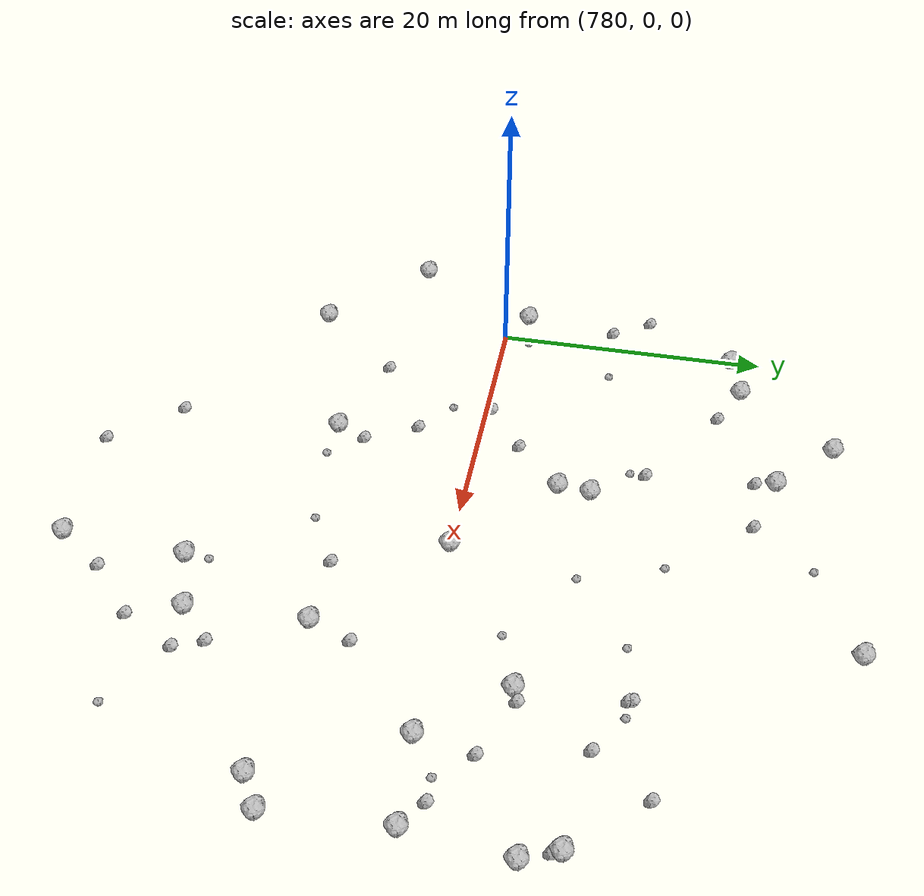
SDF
<sdf version="1.6">
 <world name="default">
  <include><uri>model://sun</uri></include>
  <model name="rock1_20_4">
   <include><uri>model://rock1</uri><pose>772.8423824960788 -7.714600676782144 0.5 0 0 0</pose></include>
  </model>
  <model name="rock1_20_5">
   <include><uri>model://rock1</uri><pose>796.561536861774 6.422122674907662 0.5 0 0 0</pose></include>
  </model>
  <model name="rock1_20_6">
   <include><uri>model://rock1</uri><pose>803.59202714553 -0.04587781677535574 0.5 0 0 0</pose></include>
  </model>
  <model name="rock1_20_7">
   <include><uri>model://rock1</uri><pose>826.7519841266889 -7.1662915874610995 0.5 0 0 0</pose></include>
  </model>
  <model name="rock1_20_8">
   <include><uri>model://rock1</uri><pose>819.7363459873835 0.7375848055278738 0.5 0 0 0</pose></include>
  </model>
  <model name="rock1_20_9">
   <include><uri>model://rock1</uri><pose>780.2218831710621 -14.453199976953057 0.5 0 0 0</pose></include>
  </model>
  <model name="rock1_20_10">
   <include><uri>model://rock1</uri><pose>827.1903501975693 8.328208386233392 0.5 0 0 0</pose></include>
  </model>
  <model name="rock1_20_11">
   <include><uri>model://rock1</uri><pose>796.8098210724355 8.77071487523277 0.5 0 0 0</pose></include>
  </model>
  <model name="rock1_20_12">
   <include><uri>model://rock1</uri><pose>783.8448784973803 18.69972343768196 0.5 0 0 0</pose></include>
  </model>
  <model name="rock1_20_13">
   <include><uri>model://rock1</uri><pose>812.3924425297104 -16.17900886182693 0.5 0 0 0</pose></include>
  </model>
  <model name="rock1_20_14">
   <include><uri>model://rock1</uri><pose>793.4921347338357 21.68483689464429 0.5 0 0 0</pose></include>
  </model>
  <model name="rock1_20_15">
   <include><uri>model://rock1</uri><pose>793.1032955579124 -10.47337456163951 0.5 0 0 0</pose></include>
  </model>
  <model name="rock1_20_16">
   <include><uri>model://rock1</uri><pose>815.077161992141 6.18144960671593 0.5 0 0 0</pose></include>
  </model>
  <model name="rock1_20_17">
   <include><uri>model://rock1</uri><pose>826.1888280513385 10.744678394271418 0.5 0 0 0</pose></include>
  </model>
  <model name="rock1_20_18">
   <include><uri>model://rock1</uri><pose>826.3362238324135 1.2042039374020987 0.5 0 0 0</pose></include>
  </model>
  <model name="rock1_20_19">
   <include><uri>model://rock1</uri><pose>812.0549300105608 -7.749430061454941 0.5 0 0 0</pose></include>
  </model>
  <model name="rock1_20_20">
   <include><uri>model://rock1</uri><pose>824.3607257325307 -8.49190501562116 0.5 0 0 0</pose></include>
  </model>
  <model name="rock1_20_21">
   <include><uri>model://rock1</uri><pose>789.2004193939821 25.67401709054417 0.5 0 0 0</pose></include>
  </model>
  <model name="rock1_20_22">
   <include><uri>model://rock1</uri><pose>777.5909272639701 1.4740625773700557 0.5 0 0 0</pose></include>
  </model>
  <model name="rock1_20_23">
   <include><uri>model://rock1</uri><pose>807.8897612651292 -17.553034052619477 0.5 0 0 0</pose></include>
  </model>
  <model name="rock1_20_24">
   <include><uri>model://rock1</uri><pose>808.5192541500534 27.692054852634627 0.5 0 0 0</pose></include>
  </model>
  <model name="rock1_20_25">
   <include><uri>model://rock1</uri><pose>807.3319899893958 -26.490876892157228 0.5 0 0 0</pose></include>
  </model>
  <model name="rock1_20_26">
   <include><uri>model://rock1</uri><pose>780.2991874717934 17.751665588427343 0.5 0 0 0</pose></include>
  </model>
  <model name="rock2_20_0">
   <include><uri>model://rock2</uri><pose>814.803203468196 13.395883702309781 0.3 0 0 0</pose></include>
  </model>
  <model name="rock2_20_1">
   <include><uri>model://rock2</uri><pose>813.2204965647059 -4.702203502937678 0.3 0 0 0</pose></include>
  </model>
  <model name="rock2_20_2">
   <include><uri>model://rock2</uri><pose>789.1877118021597 0.4285569219499905 0.3 0 0 0</pose></include>
  </model>
  <model name="rock2_20_3">
   <include><uri>model://rock2</uri><pose>814.7327228614031 13.620642281614728 0.3 0 0 0</pose></include>
  </model>
  <model name="rock2_20_4">
   <include><uri>model://rock2</uri><pose>794.0357986842173 -8.259365142667747 0.3 0 0 0</pose></include>
  </model>
  <model name="rock2_20_5">
   <include><uri>model://rock2</uri><pose>794.2762369515518 12.475961123347204 0.3 0 0 0</pose></include>
  </model>
  <model name="rock2_20_6">
   <include><uri>model://rock2</uri><pose>809.8515106021961 -23.026602941885855 0.3 0 0 0</pose></include>
  </model>
  <model name="rock2_20_7">
   <include><uri>model://rock2</uri><pose>814.9028539638824 -13.859953014181116 0.3 0 0 0</pose></include>
  </model>
  <model name="rock2_20_8">
   <include><uri>model://rock2</uri><pose>792.1271249740994 -4.5880074554269825 0.3 0 0 0</pose></include>
  </model>
  <model name="rock2_20_9">
   <include><uri>model://rock2</uri><pose>792.8966663062531 3.08353337136019 0.3 0 0 0</pose></include>
  </model>
  <model name="rock2_20_10">
   <include><uri>model://rock2</uri><pose>793.7479402064514 20.23286088375047 0.3 0 0 0</pose></include>
  </model>
  <model name="rock2_20_11">
   <include><uri>model://rock2</uri><pose>816.0984856822128 6.608239602401781 0.3 0 0 0</pose></include>
  </model>
  <model name="rock2_20_12">
   <include><uri>model://rock2</uri><pose>797.4899694826767 -26.948096532537175 0.3 0 0 0</pose></include>
  </model>
  <model name="rock2_20_13">
   <include><uri>model://rock2</uri><pose>787.166435697302 17.189054420521842 0.3 0 0 0</pose></include>
  </model>
  <model name="rock2_20_14">
   <include><uri>model://rock2</uri><pose>815.7526900443655 -15.879349225733941 0.3 0 0 0</pose></include>
  </model>
  <model name="rock2_20_15">
   <include><uri>model://rock2</uri><pose>821.8227392344994 15.474128947121628 0.3 0 0 0</pose></include>
  </model>
  <model name="rock2_20_16">
   <include><uri>model://rock2</uri><pose>798.1306960077411 20.33640870539979 0.3 0 0 0</pose></include>
  </model>
  <model name="rock2_20_17">
   <include><uri>model://rock2</uri><pose>785.747189297886 -8.202719689901542 0.3 0 0 0</pose></include>
  </model>
  <model name="rock2_20_18">
   <include><uri>model://rock2</uri><pose>824.3141199109872 2.538898834841291 0.3 0 0 0</pose></include>
  </model>
  <model name="rock2_20_19">
   <include><uri>model://rock2</uri><pose>793.2727999656782 -22.309466664282485 0.3 0 0 0</pose></include>
  </model>
  <model name="rock2_20_20">
   <include><uri>model://rock2</uri><pose>826.338706683188 10.216926950593738 0.3 0 0 0</pose></include>
  </model>
  <model name="rock2_20_21">
   <include><uri>model://rock2</uri><pose>806.644414052359 -7.630255546163795 0.3 0 0 0</pose></include>
  </model>
  <model name="rock2_20_22">
   <include><uri>model://rock2</uri><pose>776.541792645602 11.179847948797757 0.3 0 0 0</pose></include>
  </model>
  <model name="rock2_20_23">
   <include><uri>model://rock2</uri><pose>778.344136808708 8.392860255258874 0.3 0 0 0</pose></include>
  </model>
  <model name="rock2_20_24">
   <include><uri>model://rock2</uri><pose>813.640791027405 -19.72719814665223 0.3 0 0 0</pose></include>
  </model>
  <model name="rock2_20_25">
   <include><uri>model://rock2</uri><pose>820.4718447148532 4.793508504173346 0.3 0 0 0</pose></include>
  </model>
  <model name="rock2_20_26">
   <include><uri>model://rock2</uri><pose>818.9120835527563 11.600282036949658 0.3 0 0 0</pose></include>
  </model>
  <model name="rock3_20_0">
   <include><uri>model://rock3</uri><pose>810.4640508141566 12.849499120739331 0.2 0 0 0</pose></include>
  </model>
  <model name="rock3_20_1">
   <include><uri>model://rock3</uri><pose>794.1745017861891 11.364734212316954 0.2 0 0 0</pose></include>
  </model>
  <model name="rock3_20_2">
   <include><uri>model://rock3</uri><pose>820.79216119781 -18.909757903828265 0.2 0 0 0</pose></include>
  </model>
  <model name="rock3_20_3">
   <include><uri>model://rock3</uri><pose>796.0078245356625 -10.653288055557791 0.2 0 0 0</pose></include>
  </model>
  <model name="rock3_20_4">
   <include><uri>model://rock3</uri><pose>805.0673952640892 8.883557503281317 0.2 0 0 0</pose></include>
  </model>
  <model name="rock3_20_5">
   <include><uri>model://rock3</uri><pose>802.6796622374417 -9.77527501769897 0.2 0 0 0</pose></include>
  </model>
  <model name="rock3_20_6">
   <include><uri>model://rock3</uri><pose>816.0490410427091 13.330724630733862 0.2 0 0 0</pose></include>
  </model>
  <model name="rock3_20_7">
   <include><uri>model://rock3</uri><pose>780.619512996967 1.9474884300595683 0.2 0 0 0</pose></include>
  </model>
  <model name="rock3_20_8">
   <include><uri>model://rock3</uri><pose>783.5848107121349 8.630212620122201 0.2 0 0 0</pose></include>
  </model>
  <model name="rock3_20_9">
   <include><uri>model://rock3</uri><pose>822.4994992966484 2.4756683843971174 0.2 0 0 0</pose></include>
  </model>
  <model name="rock3_20_10">
   <include><uri>model://rock3</uri><pose>801.5487370239393 24.510146145545235 0.2 0 0 0</pose></include>
  </model>
  <model name="rock3_20_11">
   <include><uri>model://rock3</uri><pose>807.832536612484 -15.860340090391873 0.2 0 0 0</pose></include>
  </model>
  <model name="rock3_20_12">
   <include><uri>model://rock3</uri><pose>803.0344148617274 14.61649062665795 0.2 0 0 0</pose></include>
  </model>
  <model name="rock3_20_13">
   <include><uri>model://rock3</uri><pose>810.8917810170146 4.795896985995277 0.2 0 0 0</pose></include>
  </model>
  <model name="rock3_20_14">
   <include><uri>model://rock3</uri><pose>789.3500375926152 -2.483877176554831 0.2 0 0 0</pose></include>
  </model>
 </world>
</sdf>
